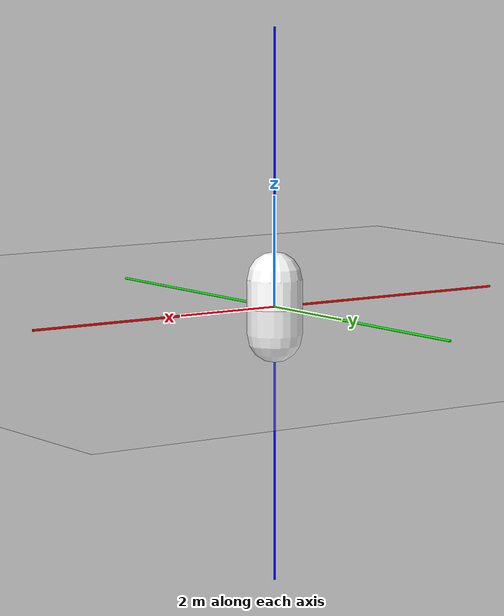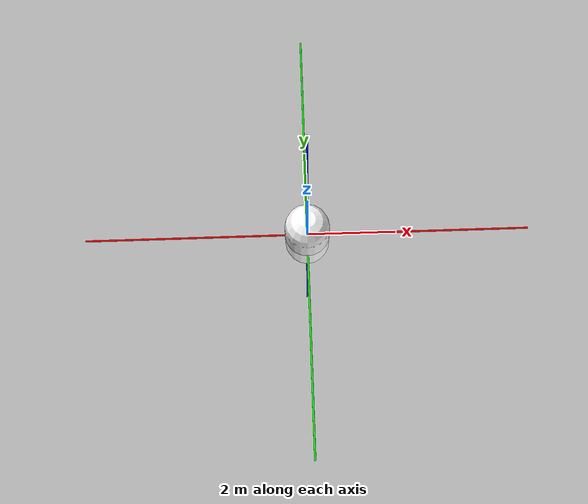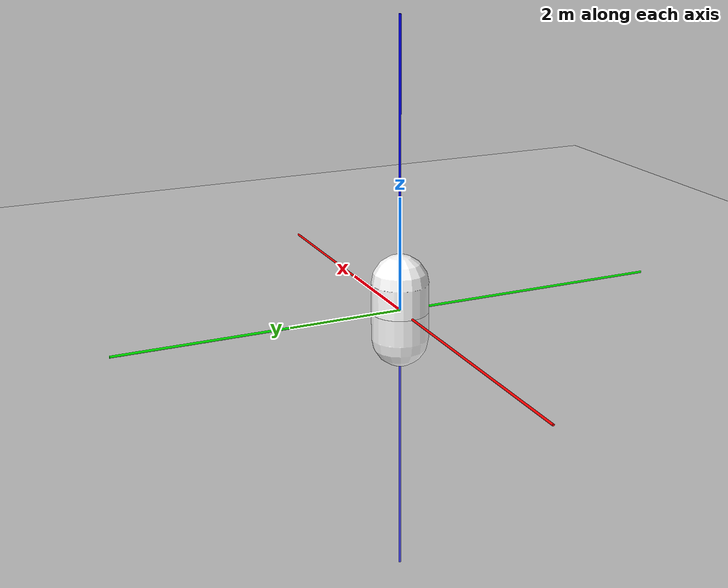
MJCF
<?xml version='1.0' encoding='utf-8'?>
<mujoco model="scene_export">
  <compiler angle="degree" coordinate="local" eulerseq="xyz"/>
  <option>
    <flag contact="disable" gravity="disable"/>
  </option>
  <asset>
    <texture name="grid" type="2d" builtin="checker" rgb1=".8 .8 .8" rgb2=".9 .9 .9" width="300" height="300"/>
    <material name="grid" texture="grid" texrepeat="8 8"/>
    <material name="default" rgba=".8 .8 .8 1"/>
  </asset>
  <worldbody>
    <light name="top" pos="0 0 2" dir="0 0 -1"/>
    <geom name="x_axis" type="cylinder" size="0.02 5" rgba="1 0 0 1" euler="0 90 0" pos="0 0 0"/>
    <geom name="y_axis" type="cylinder" size="0.02 5" rgba="0 1 0 1" euler="90 0 0" pos="0 0 0"/>
    <geom name="z_axis" type="cylinder" size="0.02 5" rgba="0 0 1 1" pos="0 0 0"/>
    <geom name="ground" type="plane" size="50 50 0.1" pos="0 0 0" material="grid"/>
    <body name="0_胶囊体_1" pos="0.0 0.0 0.0">
      <geom name="0_胶囊体_1_geom" type="capsule" size="0.5 0.5" rgba="1.0 1.0 1.0 1.0"/>
    </body>
  </worldbody>
</mujoco>
